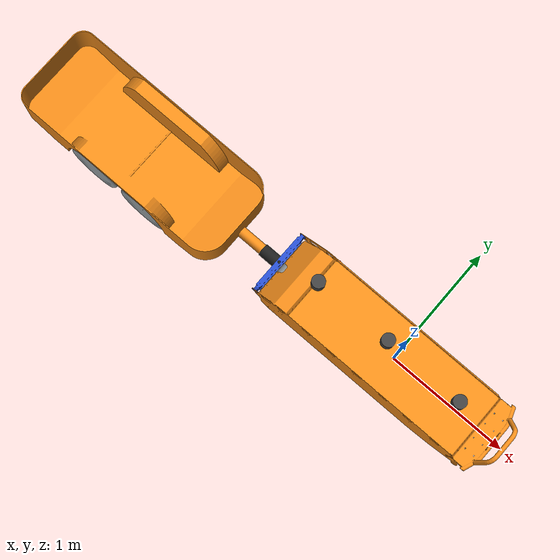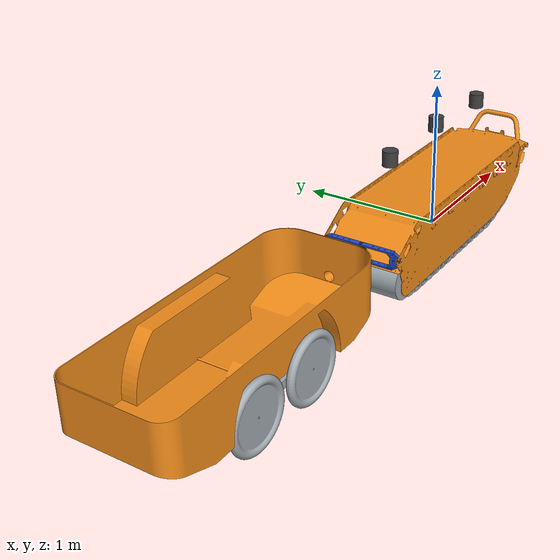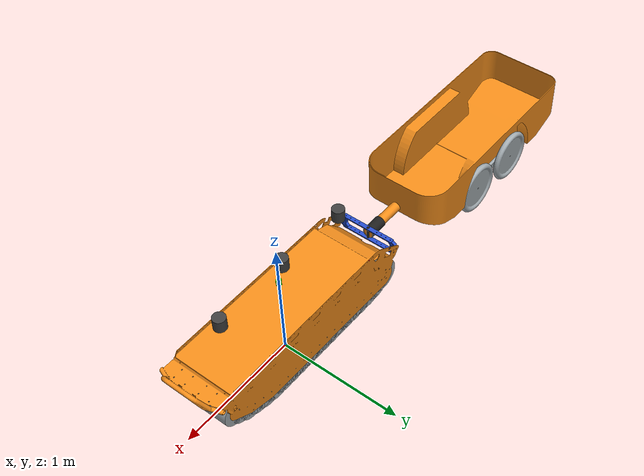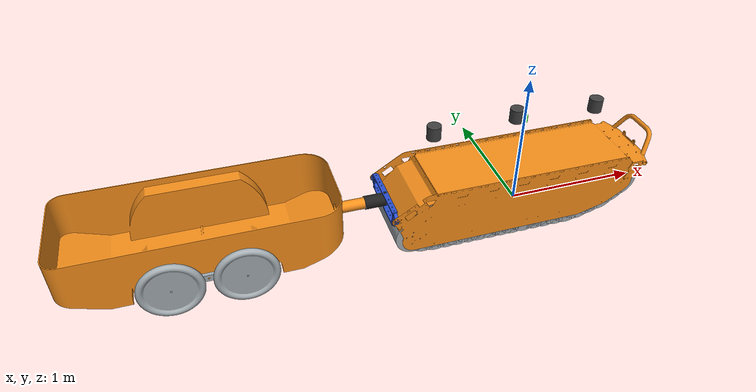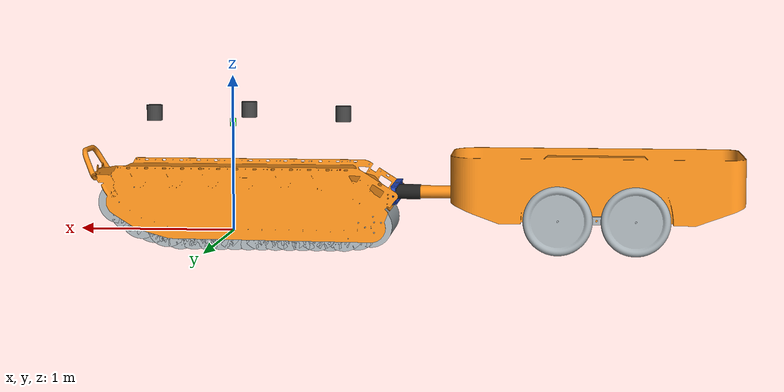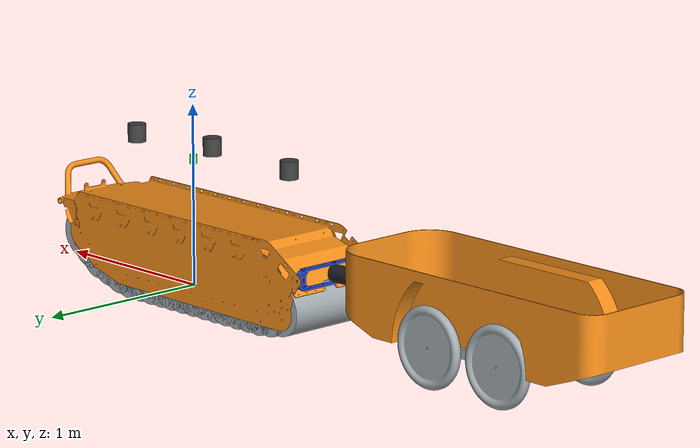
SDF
<sdf version='1.11'>
  <model name='onshape'>
    <link name='base_footprint'>
      <inertial>
        <pose>-0.077895993849594752 -0.045484125368850339 0.10209758651035911 0 0 0</pose>
        <mass>150.40000000000001</mass>
        <inertia>
          <ixx>11.215394955136221</ixx>
          <ixy>-0.00037648771659326558</ixy>
          <ixz>-0.001437969101735215</ixz>
          <iyy>58.512314565353648</iyy>
          <iyz>-0.0018269934809705961</iyz>
          <izz>63.756945860482027</izz>
        </inertia>
      </inertial>
      <visual name='base_footprint_fixed_joint_lump__base_link_visual'>
        <pose>-0.0034808381178577409 -0.051022168970358453 0.39330103716210751 0 0 3.1415926535897931</pose>
        <geometry>
          <mesh>
            <scale>1 1 1</scale>
            <uri>file:///home/ws/mtt_ws/install/mtt_description/share/mtt_description/meshes/visual/m500_ra-02_r02.stl</uri>
          </mesh>
        </geometry>
        <material>
          <script>
            <name>Gazebo/Orange</name>
            <uri>file://media/materials/scripts/gazebo.material</uri>
          </script>
          <diffuse>1 0.892156899 0.00490196096 1</diffuse>
          <ambient>1 0.892156899 0.00490196096 1</ambient>
        </material>
      </visual>
      <visual name='base_footprint_fixed_joint_lump__lidar_link_visual_1'>
        <pose>0 0 0.70000000000000007 0 0 0</pose>
        <geometry>
          <cylinder>
            <length>0.050000000000000003</length>
            <radius>0.02</radius>
          </cylinder>
        </geometry>
        <material>
          <diffuse>0 1 0 1</diffuse>
          <ambient>0 1 0 1</ambient>
        </material>
      </visual>
      <visual name='base_footprint_fixed_joint_lump__reference_point_visual_2'>
        <pose>-0.71748083811785779 0.21597831029643161 0.42330103716210749 0 0 0</pose>
        <geometry>
          <sphere>
            <radius>0.0050000000000000001</radius>
          </sphere>
        </geometry>
        <material>
          <diffuse>1 0 0 1</diffuse>
          <ambient>1 0 0 1</ambient>
        </material>
      </visual>
      <visual name='base_footprint_fixed_joint_lump__center_lidar_link_visual_3'>
        <pose>-0.097480838117857793 -0.050021689703568462 0.77830103716210752 0 0 1.5707963267948959</pose>
        <geometry>
          <cylinder>
            <length>0.10000000000000001</length>
            <radius>0.050000000000000003</radius>
          </cylinder>
        </geometry>
        <material>
          <diffuse>0.25 0.25 0.25 1</diffuse>
          <ambient>0.25 0.25 0.25 1</ambient>
        </material>
      </visual>
      <visual name='base_footprint_fixed_joint_lump__front_lidar_link_visual_4'>
        <pose>0.5225191618821422 -0.050021689703568462 0.75350103716210748 0 0 0</pose>
        <geometry>
          <cylinder>
            <length>0.10000000000000001</length>
            <radius>0.050000000000000003</radius>
          </cylinder>
        </geometry>
        <material>
          <diffuse>0.25 0.25 0.25 1</diffuse>
          <ambient>0.25 0.25 0.25 1</ambient>
        </material>
      </visual>
      <visual name='base_footprint_fixed_joint_lump__rear_lidar_link_visual_5'>
        <pose>-0.70748083811785778 -0.050021689703568462 0.75350103716210748 0 0 0</pose>
        <geometry>
          <cylinder>
            <length>0.10000000000000001</length>
            <radius>0.050000000000000003</radius>
          </cylinder>
        </geometry>
        <material>
          <diffuse>0.25 0.25 0.25 1</diffuse>
          <ambient>0.25 0.25 0.25 1</ambient>
        </material>
      </visual>
      <sensor name='center_lidar' type='gpu_lidar'>
        <update_rate>10</update_rate>
        <ray>
          <scan>
            <horizontal>
              <samples>360</samples>
              <resolution>1</resolution>
              <min_angle>-3.1400000000000001</min_angle>
              <max_angle>3.1400000000000001</max_angle>
            </horizontal>
          </scan>
          <range>
            <min>0.10000000000000001</min>
            <max>30</max>
          </range>
        </ray>
        <pose>-0.097480800000000006 -0.050021700000000002 0.77830100000000002 0 0 1.5708</pose>
      </sensor>
      <sensor name='front_lidar' type='gpu_lidar'>
        <update_rate>10</update_rate>
        <ray>
          <scan>
            <horizontal>
              <samples>360</samples>
              <resolution>1</resolution>
              <min_angle>-3.1400000000000001</min_angle>
              <max_angle>3.1400000000000001</max_angle>
            </horizontal>
          </scan>
          <range>
            <min>0.10000000000000001</min>
            <max>30</max>
          </range>
        </ray>
        <pose>0.52251899999999996 -0.050021700000000002 0.75350099999999998 0 0 0</pose>
      </sensor>
      <sensor name='rear_lidar' type='gpu_lidar'>
        <update_rate>10</update_rate>
        <ray>
          <scan>
            <horizontal>
              <samples>360</samples>
              <resolution>1</resolution>
              <min_angle>-3.1400000000000001</min_angle>
              <max_angle>3.1400000000000001</max_angle>
            </horizontal>
          </scan>
          <range>
            <min>0.10000000000000001</min>
            <max>30</max>
          </range>
        </ray>
        <pose>-0.70748100000000003 -0.050021700000000002 0.75350099999999998 0 0 0</pose>
      </sensor>
    </link>
    <joint name='10_continuous' type='revolute'>
      <pose relative_to='base_footprint'>-0.042674791204848093 -0.30260966897135838 0.037205332913699402 1.5707963267948959 0 -7.563394355258877e-16</pose>
      <parent>base_footprint</parent>
      <child>Rouleau_track_10</child>
      <axis>
        <xyz>0 0 1</xyz>
        <limit>
          <effort>-1</effort>
          <velocity>20</velocity>
          <lower>-inf</lower>
          <upper>inf</upper>
        </limit>
        <dynamics>
          <spring_reference>0</spring_reference>
          <spring_stiffness>0</spring_stiffness>
        </dynamics>
      </axis>
    </joint>
    <link name='Rouleau_track_10'>
      <pose relative_to='10_continuous'>0 0 0 0 0 0</pose>
      <inertial>
        <pose>-9.0830111450047394e-12 -8.2227341536032505e-12 -0.26193750000873389 0 0 0</pose>
        <mass>1</mass>
        <inertia>
          <ixx>0.025399999999999999</ixx>
          <ixy>0</ixy>
          <ixz>0</ixz>
          <iyy>0.025399999999999999</iyy>
          <iyz>0</iyz>
          <izz>0.0088900000000000003</izz>
        </inertia>
      </inertial>
      <visual name='Rouleau_track_10_visual'>
        <pose>-2.775557561562891e-17 0 -0.26193749999999999 -1.5707963267948959 -2.9274135154685974e-32 0</pose>
        <geometry>
          <mesh>
            <scale>1 1 1</scale>
            <uri>file:///home/ws/mtt_ws/install/mtt_description/share/mtt_description/meshes/visual/rouleaufaketrack_525po.stl</uri>
          </mesh>
        </geometry>
        <material>
          <diffuse>0.632352948 0.666666687 0.686274529 1</diffuse>
          <ambient>0.632352948 0.666666687 0.686274529 1</ambient>
        </material>
      </visual>
    </link>
    <joint name='11_continuous' type='revolute'>
      <pose relative_to='base_footprint'>-0.1298179530678156 -0.30260966897135838 0.03721535346950286 1.5707963267948959 0 -7.563394355258877e-16</pose>
      <parent>base_footprint</parent>
      <child>Rouleau_track_11</child>
      <axis>
        <xyz>0 0 1</xyz>
        <limit>
          <effort>-1</effort>
          <velocity>20</velocity>
          <lower>-inf</lower>
          <upper>inf</upper>
        </limit>
        <dynamics>
          <spring_reference>0</spring_reference>
          <spring_stiffness>0</spring_stiffness>
        </dynamics>
      </axis>
    </joint>
    <link name='Rouleau_track_11'>
      <pose relative_to='11_continuous'>0 0 0 0 0 0</pose>
      <inertial>
        <pose>-9.0830111450047394e-12 -8.2227341536032505e-12 -0.26193750000873389 0 0 0</pose>
        <mass>1</mass>
        <inertia>
          <ixx>0.025399999999999999</ixx>
          <ixy>0</ixy>
          <ixz>0</ixz>
          <iyy>0.025399999999999999</iyy>
          <iyz>0</iyz>
          <izz>0.0088900000000000003</izz>
        </inertia>
      </inertial>
      <visual name='Rouleau_track_11_visual'>
        <pose>-2.775557561562891e-17 0 -0.26193749999999999 -1.5707963267948959 -2.9274135154685974e-32 0</pose>
        <geometry>
          <mesh>
            <scale>1 1 1</scale>
            <uri>file:///home/ws/mtt_ws/install/mtt_description/share/mtt_description/meshes/visual/rouleaufaketrack_525po.stl</uri>
          </mesh>
        </geometry>
        <material>
          <diffuse>0.632352948 0.666666687 0.686274529 1</diffuse>
          <ambient>0.632352948 0.666666687 0.686274529 1</ambient>
        </material>
      </visual>
    </link>
    <joint name='12_continuous' type='revolute'>
      <pose relative_to='base_footprint'>-0.21696111493078299 -0.30260966897135833 0.037225374025305319 1.5707963267948959 0 -7.563394355258877e-16</pose>
      <parent>base_footprint</parent>
      <child>Rouleau_track_12</child>
      <axis>
        <xyz>0 0 1</xyz>
        <limit>
          <effort>-1</effort>
          <velocity>20</velocity>
          <lower>-inf</lower>
          <upper>inf</upper>
        </limit>
        <dynamics>
          <spring_reference>0</spring_reference>
          <spring_stiffness>0</spring_stiffness>
        </dynamics>
      </axis>
    </joint>
    <link name='Rouleau_track_12'>
      <pose relative_to='12_continuous'>0 0 0 0 0 0</pose>
      <inertial>
        <pose>-9.0829833894291238e-12 -8.2227341536032505e-12 -0.26193750000873389 0 0 0</pose>
        <mass>1</mass>
        <inertia>
          <ixx>0.025399999999999999</ixx>
          <ixy>0</ixy>
          <ixz>0</ixz>
          <iyy>0.025399999999999999</iyy>
          <iyz>0</iyz>
          <izz>0.0088900000000000003</izz>
        </inertia>
      </inertial>
      <visual name='Rouleau_track_12_visual'>
        <pose>0 0 -0.26193749999999999 -1.5707963267948959 -2.9274135154685974e-32 0</pose>
        <geometry>
          <mesh>
            <scale>1 1 1</scale>
            <uri>file:///home/ws/mtt_ws/install/mtt_description/share/mtt_description/meshes/visual/rouleaufaketrack_525po.stl</uri>
          </mesh>
        </geometry>
        <material>
          <diffuse>0.632352948 0.666666687 0.686274529 1</diffuse>
          <ambient>0.632352948 0.666666687 0.686274529 1</ambient>
        </material>
      </visual>
    </link>
    <joint name='13_continuous' type='revolute'>
      <pose relative_to='base_footprint'>-0.30410427679375029 -0.30260966897135821 0.037235394581107778 1.5707963267948959 0 -7.563394355258877e-16</pose>
      <parent>base_footprint</parent>
      <child>Rouleau_track_13</child>
      <axis>
        <xyz>0 0 1</xyz>
        <limit>
          <effort>-1</effort>
          <velocity>20</velocity>
          <lower>-inf</lower>
          <upper>inf</upper>
        </limit>
        <dynamics>
          <spring_reference>0</spring_reference>
          <spring_stiffness>0</spring_stiffness>
        </dynamics>
      </axis>
    </joint>
    <link name='Rouleau_track_13'>
      <pose relative_to='13_continuous'>0 0 0 0 0 0</pose>
      <inertial>
        <pose>-9.0829833894291238e-12 -8.2227341536032505e-12 -0.26193750000873389 0 0 0</pose>
        <mass>1</mass>
        <inertia>
          <ixx>0.025399999999999999</ixx>
          <ixy>0</ixy>
          <ixz>0</ixz>
          <iyy>0.025399999999999999</iyy>
          <iyz>0</iyz>
          <izz>0.0088900000000000003</izz>
        </inertia>
      </inertial>
      <visual name='Rouleau_track_13_visual'>
        <pose>0 0 -0.2619375000000001 -1.5707963267948959 -2.9274135154685974e-32 0</pose>
        <geometry>
          <mesh>
            <scale>1 1 1</scale>
            <uri>file:///home/ws/mtt_ws/install/mtt_description/share/mtt_description/meshes/visual/rouleaufaketrack_525po.stl</uri>
          </mesh>
        </geometry>
        <material>
          <diffuse>0.632352948 0.666666687 0.686274529 1</diffuse>
          <ambient>0.632352948 0.666666687 0.686274529 1</ambient>
        </material>
      </visual>
    </link>
    <joint name='14_continuous' type='revolute'>
      <pose relative_to='base_footprint'>-0.39124743865671768 -0.30260966897135821 0.037245415136910293 1.5707963267948959 0 -7.563394355258877e-16</pose>
      <parent>base_footprint</parent>
      <child>Rouleau_track_14</child>
      <axis>
        <xyz>0 0 1</xyz>
        <limit>
          <effort>-1</effort>
          <velocity>20</velocity>
          <lower>-inf</lower>
          <upper>inf</upper>
        </limit>
        <dynamics>
          <spring_reference>0</spring_reference>
          <spring_stiffness>0</spring_stiffness>
        </dynamics>
      </axis>
    </joint>
    <link name='Rouleau_track_14'>
      <pose relative_to='14_continuous'>0 0 0 0 0 0</pose>
      <inertial>
        <pose>-9.0830111450047394e-12 -8.2227341536032505e-12 -0.26193750000873389 0 0 0</pose>
        <mass>1</mass>
        <inertia>
          <ixx>0.025399999999999999</ixx>
          <ixy>0</ixy>
          <ixz>0</ixz>
          <iyy>0.025399999999999999</iyy>
          <iyz>0</iyz>
          <izz>0.0088900000000000003</izz>
        </inertia>
      </inertial>
      <visual name='Rouleau_track_14_visual'>
        <pose>-2.775557561562891e-17 0 -0.26193749999999999 -1.5707963267948959 -2.9274135154685974e-32 0</pose>
        <geometry>
          <mesh>
            <scale>1 1 1</scale>
            <uri>file:///home/ws/mtt_ws/install/mtt_description/share/mtt_description/meshes/visual/rouleaufaketrack_525po.stl</uri>
          </mesh>
        </geometry>
        <material>
          <diffuse>0.632352948 0.666666687 0.686274529 1</diffuse>
          <ambient>0.632352948 0.666666687 0.686274529 1</ambient>
        </material>
      </visual>
    </link>
    <joint name='15_continuous' type='revolute'>
      <pose relative_to='base_footprint'>-0.47839060051968407 -0.30260966897135821 0.037255435692712703 1.5707963267948959 0 -7.563394355258877e-16</pose>
      <parent>base_footprint</parent>
      <child>Rouleau_track_15</child>
      <axis>
        <xyz>0 0 1</xyz>
        <limit>
          <effort>-1</effort>
          <velocity>20</velocity>
          <lower>-inf</lower>
          <upper>inf</upper>
        </limit>
        <dynamics>
          <spring_reference>0</spring_reference>
          <spring_stiffness>0</spring_stiffness>
        </dynamics>
      </axis>
    </joint>
    <link name='Rouleau_track_15'>
      <pose relative_to='15_continuous'>0 0 0 0 0 0</pose>
      <inertial>
        <pose>-9.0830111450047394e-12 -8.2227341536032505e-12 -0.26193750000873389 0 0 0</pose>
        <mass>1</mass>
        <inertia>
          <ixx>0.025399999999999999</ixx>
          <ixy>0</ixy>
          <ixz>0</ixz>
          <iyy>0.025399999999999999</iyy>
          <iyz>0</iyz>
          <izz>0.0088900000000000003</izz>
        </inertia>
      </inertial>
      <visual name='Rouleau_track_15_visual'>
        <pose>-2.775557561562891e-17 0 -0.26193749999999999 -1.5707963267948959 -2.9274135154685974e-32 0</pose>
        <geometry>
          <mesh>
            <scale>1 1 1</scale>
            <uri>file:///home/ws/mtt_ws/install/mtt_description/share/mtt_description/meshes/visual/rouleaufaketrack_525po.stl</uri>
          </mesh>
        </geometry>
        <material>
          <diffuse>0.632352948 0.666666687 0.686274529 1</diffuse>
          <ambient>0.632352948 0.666666687 0.686274529 1</ambient>
        </material>
      </visual>
    </link>
    <joint name='16_continuous' type='revolute'>
      <pose relative_to='base_footprint'>-0.56553376238265152 -0.30260966897135799 0.037265456248515211 1.5707963267948959 0 -7.563394355258877e-16</pose>
      <parent>base_footprint</parent>
      <child>Rouleau_track_16</child>
      <axis>
        <xyz>0 0 1</xyz>
        <limit>
          <effort>-1</effort>
          <velocity>20</velocity>
          <lower>-inf</lower>
          <upper>inf</upper>
        </limit>
        <dynamics>
          <spring_reference>0</spring_reference>
          <spring_stiffness>0</spring_stiffness>
        </dynamics>
      </axis>
    </joint>
    <link name='Rouleau_track_16'>
      <pose relative_to='16_continuous'>0 0 0 0 0 0</pose>
      <inertial>
        <pose>-9.0829278782778925e-12 -8.2227341536032505e-12 -0.26193750000873389 0 0 0</pose>
        <mass>1</mass>
        <inertia>
          <ixx>0.025399999999999999</ixx>
          <ixy>0</ixy>
          <ixz>0</ixz>
          <iyy>0.025399999999999999</iyy>
          <iyz>0</iyz>
          <izz>0.0088900000000000003</izz>
        </inertia>
      </inertial>
      <visual name='Rouleau_track_16_visual'>
        <pose>5.5511151231257827e-17 0 -0.26193749999999999 -1.5707963267948959 -2.9274135154685974e-32 0</pose>
        <geometry>
          <mesh>
            <scale>1 1 1</scale>
            <uri>file:///home/ws/mtt_ws/install/mtt_description/share/mtt_description/meshes/visual/rouleaufaketrack_525po.stl</uri>
          </mesh>
        </geometry>
        <material>
          <diffuse>0.632352948 0.666666687 0.686274529 1</diffuse>
          <ambient>0.632352948 0.666666687 0.686274529 1</ambient>
        </material>
      </visual>
    </link>
    <joint name='17_continuous' type='revolute'>
      <pose relative_to='base_footprint'>-0.65267692424561885 -0.30260966897135799 0.037275476804317607 1.5707963267948959 0 -7.563394355258877e-16</pose>
      <parent>base_footprint</parent>
      <child>Rouleau_track_17</child>
      <axis>
        <xyz>0 0 1</xyz>
        <limit>
          <effort>-1</effort>
          <velocity>20</velocity>
          <lower>-inf</lower>
          <upper>inf</upper>
        </limit>
        <dynamics>
          <spring_reference>0</spring_reference>
          <spring_stiffness>0</spring_stiffness>
        </dynamics>
      </axis>
    </joint>
    <link name='Rouleau_track_17'>
      <pose relative_to='17_continuous'>0 0 0 0 0 0</pose>
      <inertial>
        <pose>-9.0829278782778925e-12 -8.2227341536032505e-12 -0.26193750000873389 0 0 0</pose>
        <mass>1</mass>
        <inertia>
          <ixx>0.025399999999999999</ixx>
          <ixy>0</ixy>
          <ixz>0</ixz>
          <iyy>0.025399999999999999</iyy>
          <iyz>0</iyz>
          <izz>0.0088900000000000003</izz>
        </inertia>
      </inertial>
      <visual name='Rouleau_track_17_visual'>
        <pose>5.5511151231257827e-17 0 -0.26193749999999999 -1.5707963267948959 -2.9274135154685974e-32 0</pose>
        <geometry>
          <mesh>
            <scale>1 1 1</scale>
            <uri>file:///home/ws/mtt_ws/install/mtt_description/share/mtt_description/meshes/visual/rouleaufaketrack_525po.stl</uri>
          </mesh>
        </geometry>
        <material>
          <diffuse>0.632352948 0.666666687 0.686274529 1</diffuse>
          <ambient>0.632352948 0.666666687 0.686274529 1</ambient>
        </material>
      </visual>
    </link>
    <joint name='18_continuous' type='revolute'>
      <pose relative_to='base_footprint'>-0.73982008610858641 -0.30260966897135788 0.037285497360120129 1.5707963267948959 0 -7.563394355258877e-16</pose>
      <parent>base_footprint</parent>
      <child>Rouleau_track_18</child>
      <axis>
        <xyz>0 0 1</xyz>
        <limit>
          <effort>-1</effort>
          <velocity>20</velocity>
          <lower>-inf</lower>
          <upper>inf</upper>
        </limit>
        <dynamics>
          <spring_reference>0</spring_reference>
          <spring_stiffness>0</spring_stiffness>
        </dynamics>
      </axis>
    </joint>
    <link name='Rouleau_track_18'>
      <pose relative_to='18_continuous'>0 0 0 0 0 0</pose>
      <inertial>
        <pose>-9.0829278782778925e-12 -8.2227341536032505e-12 -0.26193750000873389 0 0 0</pose>
        <mass>1</mass>
        <inertia>
          <ixx>0.025399999999999999</ixx>
          <ixy>0</ixy>
          <ixz>0</ixz>
          <iyy>0.025399999999999999</iyy>
          <iyz>0</iyz>
          <izz>0.0088900000000000003</izz>
        </inertia>
      </inertial>
      <visual name='Rouleau_track_18_visual'>
        <pose>5.5511151231257827e-17 0 -0.2619375000000001 -1.5707963267948959 -2.9274135154685974e-32 0</pose>
        <geometry>
          <mesh>
            <scale>1 1 1</scale>
            <uri>file:///home/ws/mtt_ws/install/mtt_description/share/mtt_description/meshes/visual/rouleaufaketrack_525po.stl</uri>
          </mesh>
        </geometry>
        <material>
          <diffuse>0.632352948 0.666666687 0.686274529 1</diffuse>
          <ambient>0.632352948 0.666666687 0.686274529 1</ambient>
        </material>
      </visual>
    </link>
    <joint name='19_continuous' type='revolute'>
      <pose relative_to='base_footprint'>-0.825954608947019 -0.30260966897135783 0.046666820730430297 1.5707963267948959 0 -7.563394355258877e-16</pose>
      <parent>base_footprint</parent>
      <child>Rouleau_track_19</child>
      <axis>
        <xyz>0 0 1</xyz>
        <limit>
          <effort>-1</effort>
          <velocity>20</velocity>
          <lower>-inf</lower>
          <upper>inf</upper>
        </limit>
        <dynamics>
          <spring_reference>0</spring_reference>
          <spring_stiffness>0</spring_stiffness>
        </dynamics>
      </axis>
    </joint>
    <link name='Rouleau_track_19'>
      <pose relative_to='19_continuous'>0 0 0 0 0 0</pose>
      <inertial>
        <pose>-9.0829833894291238e-12 -8.2227341536032505e-12 -0.26193750000873389 0 0 0</pose>
        <mass>1</mass>
        <inertia>
          <ixx>0.025399999999999999</ixx>
          <ixy>0</ixy>
          <ixz>0</ixz>
          <iyy>0.025399999999999999</iyy>
          <iyz>0</iyz>
          <izz>0.0088900000000000003</izz>
        </inertia>
      </inertial>
      <visual name='Rouleau_track_19_visual'>
        <pose>0 0 -0.26193749999999999 -1.5707963267948959 -2.9274135154685974e-32 0</pose>
        <geometry>
          <mesh>
            <scale>1 1 1</scale>
            <uri>file:///home/ws/mtt_ws/install/mtt_description/share/mtt_description/meshes/visual/rouleaufaketrack_525po.stl</uri>
          </mesh>
        </geometry>
        <material>
          <diffuse>0.632352948 0.666666687 0.686274529 1</diffuse>
          <ambient>0.632352948 0.666666687 0.686274529 1</ambient>
        </material>
      </visual>
    </link>
    <joint name='1_continuous' type='revolute'>
      <pose relative_to='base_footprint'>0.70146757632194523 -0.30260966897135899 0.19942602155526379 1.5707963267948959 0 -7.563394355258877e-16</pose>
      <parent>base_footprint</parent>
      <child>Rouleau_track_1</child>
      <axis>
        <xyz>0 0 1</xyz>
        <limit>
          <effort>-1</effort>
          <velocity>20</velocity>
          <lower>-inf</lower>
          <upper>inf</upper>
        </limit>
        <dynamics>
          <spring_reference>0</spring_reference>
          <spring_stiffness>0</spring_stiffness>
        </dynamics>
      </axis>
    </joint>
    <link name='Rouleau_track_1'>
      <pose relative_to='1_continuous'>0 0 0 0 0 0</pose>
      <inertial>
        <pose>-9.0829833894291238e-12 -8.2227341536032505e-12 -0.26193750000873389 0 0 0</pose>
        <mass>1</mass>
        <inertia>
          <ixx>0.025399999999999999</ixx>
          <ixy>0</ixy>
          <ixz>0</ixz>
          <iyy>0.025399999999999999</iyy>
          <iyz>0</iyz>
          <izz>0.0088900000000000003</izz>
        </inertia>
      </inertial>
      <visual name='Rouleau_track_1_visual'>
        <pose>0 0 -0.26193749999999999 -1.5707963267948959 -7.7037197775474107e-33 0</pose>
        <geometry>
          <mesh>
            <scale>1 1 1</scale>
            <uri>file:///home/ws/mtt_ws/install/mtt_description/share/mtt_description/meshes/visual/rouleaufaketrack_525po.stl</uri>
          </mesh>
        </geometry>
        <material>
          <diffuse>0.632352948 0.666666687 0.686274529 1</diffuse>
          <ambient>0.632352948 0.666666687 0.686274529 1</ambient>
        </material>
      </visual>
    </link>
    <joint name='20_continuous' type='revolute'>
      <pose relative_to='base_footprint'>-0.91110403062049183 -0.30260966897135783 0.065200755783730163 1.5707963267948959 0 -7.563394355258877e-16</pose>
      <parent>base_footprint</parent>
      <child>Rouleau_track_20</child>
      <axis>
        <xyz>0 0 1</xyz>
        <limit>
          <effort>-1</effort>
          <velocity>20</velocity>
          <lower>-inf</lower>
          <upper>inf</upper>
        </limit>
        <dynamics>
          <spring_reference>0</spring_reference>
          <spring_stiffness>0</spring_stiffness>
        </dynamics>
      </axis>
    </joint>
    <link name='Rouleau_track_20'>
      <pose relative_to='20_continuous'>0 0 0 0 0 0</pose>
      <inertial>
        <pose>-9.0829833894291238e-12 -8.2227480313910583e-12 -0.26193750000873389 0 0 0</pose>
        <mass>1</mass>
        <inertia>
          <ixx>0.025399999999999999</ixx>
          <ixy>0</ixy>
          <ixz>0</ixz>
          <iyy>0.025399999999999999</iyy>
          <iyz>0</iyz>
          <izz>0.0088900000000000003</izz>
        </inertia>
      </inertial>
      <collision name='Rouleau_track_20_collision'>
        <pose>0 -1.387778780781446e-17 -0.26193749999999999 0 1.0785207688568649e-32 0</pose>
        <geometry>
          <cylinder>
            <length>0.5</length>
            <radius>0.13350000000000001</radius>
          </cylinder>
        </geometry>
      </collision>
      <visual name='Rouleau_track_20_visual'>
        <pose>0 -1.387778780781446e-17 -0.26193749999999999 -1.5707963267948959 1.0785207688568649e-32 0</pose>
        <geometry>
          <mesh>
            <scale>1 1 1</scale>
            <uri>file:///home/ws/mtt_ws/install/mtt_description/share/mtt_description/meshes/visual/rouleaufaketrack_525po.stl</uri>
          </mesh>
        </geometry>
        <material>
          <diffuse>0.632352948 0.666666687 0.686274529 1</diffuse>
          <ambient>0.632352948 0.666666687 0.686274529 1</ambient>
        </material>
      </visual>
    </link>
    <joint name='2_continuous' type='revolute'>
      <pose relative_to='base_footprint'>0.63021293776953013 -0.30260966897135899 0.14925922731169389 1.5707963267948959 0 -7.563394355258877e-16</pose>
      <parent>base_footprint</parent>
      <child>Rouleau_track_2</child>
      <axis>
        <xyz>0 0 1</xyz>
        <limit>
          <effort>-1</effort>
          <velocity>20</velocity>
          <lower>-inf</lower>
          <upper>inf</upper>
        </limit>
        <dynamics>
          <spring_reference>0</spring_reference>
          <spring_stiffness>0</spring_stiffness>
        </dynamics>
      </axis>
    </joint>
    <link name='Rouleau_track_2'>
      <pose relative_to='2_continuous'>0 0 0 0 0 0</pose>
      <inertial>
        <pose>-9.0829833894291238e-12 -8.2227341536032505e-12 -0.26193750000873389 0 0 0</pose>
        <mass>1</mass>
        <inertia>
          <ixx>0.025399999999999999</ixx>
          <ixy>0</ixy>
          <ixz>0</ixz>
          <iyy>0.025399999999999999</iyy>
          <iyz>0</iyz>
          <izz>0.0088900000000000003</izz>
        </inertia>
      </inertial>
      <visual name='Rouleau_track_2_visual'>
        <pose>0 0 -0.26193749999999999 -1.5707963267948959 -7.7037197775474107e-33 0</pose>
        <geometry>
          <mesh>
            <scale>1 1 1</scale>
            <uri>file:///home/ws/mtt_ws/install/mtt_description/share/mtt_description/meshes/visual/rouleaufaketrack_525po.stl</uri>
          </mesh>
        </geometry>
        <material>
          <diffuse>0.632352948 0.666666687 0.686274529 1</diffuse>
          <ambient>0.632352948 0.666666687 0.686274529 1</ambient>
        </material>
      </visual>
    </link>
    <joint name='3_continuous' type='revolute'>
      <pose relative_to='base_footprint'>0.55767703136521962 -0.30260966897135888 0.1017105382069472 1.5707963267948959 0 -7.563394355258877e-16</pose>
      <parent>base_footprint</parent>
      <child>Rouleau_track_3</child>
      <axis>
        <xyz>0 0 1</xyz>
        <limit>
          <effort>-1</effort>
          <velocity>20</velocity>
          <lower>-inf</lower>
          <upper>inf</upper>
        </limit>
        <dynamics>
          <spring_reference>0</spring_reference>
          <spring_stiffness>0</spring_stiffness>
        </dynamics>
      </axis>
    </joint>
    <link name='Rouleau_track_3'>
      <pose relative_to='3_continuous'>0 0 0 0 0 0</pose>
      <inertial>
        <pose>-9.0829833894291238e-12 -8.2227341536032505e-12 -0.26193750000873389 0 0 0</pose>
        <mass>1</mass>
        <inertia>
          <ixx>0.025399999999999999</ixx>
          <ixy>0</ixy>
          <ixz>0</ixz>
          <iyy>0.025399999999999999</iyy>
          <iyz>0</iyz>
          <izz>0.0088900000000000003</izz>
        </inertia>
      </inertial>
      <visual name='Rouleau_track_3_visual'>
        <pose>0 0 -0.26193749999999999 -1.5707963267948959 -2.9274135154685974e-32 0</pose>
        <geometry>
          <mesh>
            <scale>1 1 1</scale>
            <uri>file:///home/ws/mtt_ws/install/mtt_description/share/mtt_description/meshes/visual/rouleaufaketrack_525po.stl</uri>
          </mesh>
        </geometry>
        <material>
          <diffuse>0.632352948 0.666666687 0.686274529 1</diffuse>
          <ambient>0.632352948 0.666666687 0.686274529 1</ambient>
        </material>
      </visual>
    </link>
    <joint name='4_continuous' type='revolute'>
      <pose relative_to='base_footprint'>0.4743441239043048 -0.30260966897135888 0.07622412429685807 1.5707963267948959 0 -7.563394355258877e-16</pose>
      <parent>base_footprint</parent>
      <child>Rouleau_track_4</child>
      <axis>
        <xyz>0 0 1</xyz>
        <limit>
          <effort>-1</effort>
          <velocity>20</velocity>
          <lower>-inf</lower>
          <upper>inf</upper>
        </limit>
        <dynamics>
          <spring_reference>0</spring_reference>
          <spring_stiffness>0</spring_stiffness>
        </dynamics>
      </axis>
    </joint>
    <link name='Rouleau_track_4'>
      <pose relative_to='4_continuous'>0 0 0 0 0 0</pose>
      <inertial>
        <pose>-9.0829833894291238e-12 -8.2227341536032505e-12 -0.26193750000873389 0 0 0</pose>
        <mass>1</mass>
        <inertia>
          <ixx>0.025399999999999999</ixx>
          <ixy>0</ixy>
          <ixz>0</ixz>
          <iyy>0.025399999999999999</iyy>
          <iyz>0</iyz>
          <izz>0.0088900000000000003</izz>
        </inertia>
      </inertial>
      <visual name='Rouleau_track_4_visual'>
        <pose>0 0 -0.26193749999999999 -1.5707963267948959 -2.9274135154685974e-32 0</pose>
        <geometry>
          <mesh>
            <scale>1 1 1</scale>
            <uri>file:///home/ws/mtt_ws/install/mtt_description/share/mtt_description/meshes/visual/rouleaufaketrack_525po.stl</uri>
          </mesh>
        </geometry>
        <material>
          <diffuse>0.632352948 0.666666687 0.686274529 1</diffuse>
          <ambient>0.632352948 0.666666687 0.686274529 1</ambient>
        </material>
      </visual>
    </link>
    <joint name='5_continuous' type='revolute'>
      <pose relative_to='base_footprint'>0.39101121644338022 -0.30260966897135883 0.050737710386768858 1.5707963267948959 0 -7.563394355258877e-16</pose>
      <parent>base_footprint</parent>
      <child>Rouleau_track_5</child>
      <axis>
        <xyz>0 0 1</xyz>
        <limit>
          <effort>-1</effort>
          <velocity>20</velocity>
          <lower>-inf</lower>
          <upper>inf</upper>
        </limit>
        <dynamics>
          <spring_reference>0</spring_reference>
          <spring_stiffness>0</spring_stiffness>
        </dynamics>
      </axis>
    </joint>
    <link name='Rouleau_track_5'>
      <pose relative_to='5_continuous'>0 0 0 0 0 0</pose>
      <inertial>
        <pose>-9.0829833894291238e-12 -8.2227341536032505e-12 -0.26193750000873389 0 0 0</pose>
        <mass>1</mass>
        <inertia>
          <ixx>0.025399999999999999</ixx>
          <ixy>0</ixy>
          <ixz>0</ixz>
          <iyy>0.025399999999999999</iyy>
          <iyz>0</iyz>
          <izz>0.0088900000000000003</izz>
        </inertia>
      </inertial>
      <collision name='Rouleau_track_5_collision'>
        <pose>0 0 -0.26193749999999999 0 -2.9274135154685979e-32 0</pose>
        <geometry>
          <cylinder>
            <length>0.5</length>
            <radius>0.13350000000000001</radius>
          </cylinder>
        </geometry>
      </collision>
      <visual name='Rouleau_track_5_visual'>
        <pose>0 0 -0.26193749999999999 -1.5707963267948959 -2.9274135154685974e-32 0</pose>
        <geometry>
          <mesh>
            <scale>1 1 1</scale>
            <uri>file:///home/ws/mtt_ws/install/mtt_description/share/mtt_description/meshes/visual/rouleaufaketrack_525po.stl</uri>
          </mesh>
        </geometry>
        <material>
          <diffuse>0.632352948 0.666666687 0.686274529 1</diffuse>
          <ambient>0.632352948 0.666666687 0.686274529 1</ambient>
        </material>
      </visual>
    </link>
    <joint name='6_continuous' type='revolute'>
      <pose relative_to='base_footprint'>0.30589785624702448 -0.30260966897135871 0.037165250690489572 1.5707963267948959 0 -7.563394355258877e-16</pose>
      <parent>base_footprint</parent>
      <child>Rouleau_track_6</child>
      <axis>
        <xyz>0 0 1</xyz>
        <limit>
          <effort>-1</effort>
          <velocity>20</velocity>
          <lower>-inf</lower>
          <upper>inf</upper>
        </limit>
        <dynamics>
          <spring_reference>0</spring_reference>
          <spring_stiffness>0</spring_stiffness>
        </dynamics>
      </axis>
    </joint>
    <link name='Rouleau_track_6'>
      <pose relative_to='6_continuous'>0 0 0 0 0 0</pose>
      <inertial>
        <pose>-9.0829833894291238e-12 -8.2227341536032505e-12 -0.26193750000873389 0 0 0</pose>
        <mass>1</mass>
        <inertia>
          <ixx>0.025399999999999999</ixx>
          <ixy>0</ixy>
          <ixz>0</ixz>
          <iyy>0.025399999999999999</iyy>
          <iyz>0</iyz>
          <izz>0.0088900000000000003</izz>
        </inertia>
      </inertial>
      <visual name='Rouleau_track_6_visual'>
        <pose>0 0 -0.26193749999999999 -1.5707963267948959 -2.9274135154685974e-32 0</pose>
        <geometry>
          <mesh>
            <scale>1 1 1</scale>
            <uri>file:///home/ws/mtt_ws/install/mtt_description/share/mtt_description/meshes/visual/rouleaufaketrack_525po.stl</uri>
          </mesh>
        </geometry>
        <material>
          <diffuse>0.632352948 0.666666687 0.686274529 1</diffuse>
          <ambient>0.632352948 0.666666687 0.686274529 1</ambient>
        </material>
      </visual>
    </link>
    <joint name='7_continuous' type='revolute'>
      <pose relative_to='base_footprint'>0.2187546943840542 -0.30260966897135871 0.037175271246291969 1.5707963267948959 0 -7.563394355258877e-16</pose>
      <parent>base_footprint</parent>
      <child>Rouleau_track_7</child>
      <axis>
        <xyz>0 0 1</xyz>
        <limit>
          <effort>-1</effort>
          <velocity>20</velocity>
          <lower>-inf</lower>
          <upper>inf</upper>
        </limit>
        <dynamics>
          <spring_reference>0</spring_reference>
          <spring_stiffness>0</spring_stiffness>
        </dynamics>
      </axis>
    </joint>
    <link name='Rouleau_track_7'>
      <pose relative_to='7_continuous'>0 0 0 0 0 0</pose>
      <inertial>
        <pose>-9.0829278782778925e-12 -8.2227341536032505e-12 -0.26193750000873389 0 0 0</pose>
        <mass>1</mass>
        <inertia>
          <ixx>0.025399999999999999</ixx>
          <ixy>0</ixy>
          <ixz>0</ixz>
          <iyy>0.025399999999999999</iyy>
          <iyz>0</iyz>
          <izz>0.0088900000000000003</izz>
        </inertia>
      </inertial>
      <visual name='Rouleau_track_7_visual'>
        <pose>5.5511151231257827e-17 0 -0.26193749999999999 -1.5707963267948959 -2.9274135154685974e-32 0</pose>
        <geometry>
          <mesh>
            <scale>1 1 1</scale>
            <uri>file:///home/ws/mtt_ws/install/mtt_description/share/mtt_description/meshes/visual/rouleaufaketrack_525po.stl</uri>
          </mesh>
        </geometry>
        <material>
          <diffuse>0.632352948 0.666666687 0.686274529 1</diffuse>
          <ambient>0.632352948 0.666666687 0.686274529 1</ambient>
        </material>
      </visual>
    </link>
    <joint name='8_continuous' type='revolute'>
      <pose relative_to='base_footprint'>0.13161153252108559 -0.30260966897135871 0.037185291802094483 1.5707963267948959 0 -7.563394355258877e-16</pose>
      <parent>base_footprint</parent>
      <child>Rouleau_track_8</child>
      <axis>
        <xyz>0 0 1</xyz>
        <limit>
          <effort>-1</effort>
          <velocity>20</velocity>
          <lower>-inf</lower>
          <upper>inf</upper>
        </limit>
        <dynamics>
          <spring_reference>0</spring_reference>
          <spring_stiffness>0</spring_stiffness>
        </dynamics>
      </axis>
    </joint>
    <link name='Rouleau_track_8'>
      <pose relative_to='8_continuous'>0 0 0 0 0 0</pose>
      <inertial>
        <pose>-9.0829278782778925e-12 -8.2227341536032505e-12 -0.26193750000873389 0 0 0</pose>
        <mass>1</mass>
        <inertia>
          <ixx>0.025399999999999999</ixx>
          <ixy>0</ixy>
          <ixz>0</ixz>
          <iyy>0.025399999999999999</iyy>
          <iyz>0</iyz>
          <izz>0.0088900000000000003</izz>
        </inertia>
      </inertial>
      <visual name='Rouleau_track_8_visual'>
        <pose>5.5511151231257827e-17 0 -0.26193749999999999 -1.5707963267948959 -2.9274135154685974e-32 0</pose>
        <geometry>
          <mesh>
            <scale>1 1 1</scale>
            <uri>file:///home/ws/mtt_ws/install/mtt_description/share/mtt_description/meshes/visual/rouleaufaketrack_525po.stl</uri>
          </mesh>
        </geometry>
        <material>
          <diffuse>0.632352948 0.666666687 0.686274529 1</diffuse>
          <ambient>0.632352948 0.666666687 0.686274529 1</ambient>
        </material>
      </visual>
    </link>
    <joint name='9_continuous' type='revolute'>
      <pose relative_to='base_footprint'>0.044468370658119268 -0.30260966897135849 0.037195312357896942 1.5707963267948959 0 -7.563394355258877e-16</pose>
      <parent>base_footprint</parent>
      <child>Rouleau_track_9</child>
      <axis>
        <xyz>0 0 1</xyz>
        <limit>
          <effort>-1</effort>
          <velocity>20</velocity>
          <lower>-inf</lower>
          <upper>inf</upper>
        </limit>
        <dynamics>
          <spring_reference>0</spring_reference>
          <spring_stiffness>0</spring_stiffness>
        </dynamics>
      </axis>
    </joint>
    <link name='Rouleau_track_9'>
      <pose relative_to='9_continuous'>0 0 0 0 0 0</pose>
      <inertial>
        <pose>-9.0829278782778925e-12 -8.2227341536032505e-12 -0.26193750000873389 0 0 0</pose>
        <mass>1</mass>
        <inertia>
          <ixx>0.025399999999999999</ixx>
          <ixy>0</ixy>
          <ixz>0</ixz>
          <iyy>0.025399999999999999</iyy>
          <iyz>0</iyz>
          <izz>0.0088900000000000003</izz>
        </inertia>
      </inertial>
      <visual name='Rouleau_track_9_visual'>
        <pose>5.5511151231257827e-17 0 -0.26193749999999999 -1.5707963267948959 -2.9274135154685974e-32 0</pose>
        <geometry>
          <mesh>
            <scale>1 1 1</scale>
            <uri>file:///home/ws/mtt_ws/install/mtt_description/share/mtt_description/meshes/visual/rouleaufaketrack_525po.stl</uri>
          </mesh>
        </geometry>
        <material>
          <diffuse>0.632352948 0.666666687 0.686274529 1</diffuse>
          <ambient>0.632352948 0.666666687 0.686274529 1</ambient>
        </material>
      </visual>
    </link>
    <joint name='pitch' type='revolute'>
      <pose relative_to='base_footprint'>-1.051187837601858 0.2125028310306423 0.25775105114691788 -1.5707963267948959 0 -7.563394355258877e-16</pose>
      <parent>base_footprint</parent>
      <child>Frame_fixation_articule</child>
      <axis>
        <xyz>0 0 1</xyz>
        <limit>
          <lower>-1.570796326794897</lower>
          <upper>1.570796326794897</upper>
          <effort>-1</effort>
          <velocity>20</velocity>
        </limit>
        <dynamics>
          <spring_reference>0</spring_reference>
          <spring_stiffness>0</spring_stiffness>
        </dynamics>
      </axis>
    </joint>
    <link name='Frame_fixation_articule'>
      <pose relative_to='pitch'>0 0 0 0 0 0</pose>
      <inertial>
        <pose>-3.9892756405493079e-11 -1.1475286443859221e-10 -0.26817516801928171 0 0 0</pose>
        <mass>4.2856980941026048</mass>
        <inertia>
          <ixx>0.15081833822080551</ixx>
          <ixy>-3.1493952847483553e-14</ixy>
          <ixz>-2.729130143354647e-09</ixz>
          <iyy>0.14291517499876991</iyy>
          <iyz>4.1782617806359028e-10</iyz>
          <izz>0.008772976040851534</izz>
        </inertia>
      </inertial>
      <visual name='Frame_fixation_articule_visual'>
        <pose>0 0 -0.26352500000103002 1.5707963267948959 2.9274135154685974e-32 0</pose>
        <geometry>
          <mesh>
            <scale>1 1 1</scale>
            <uri>file:///home/ws/mtt_ws/install/mtt_description/share/mtt_description/meshes/visual/m500_fa-f-01_r00.stl</uri>
          </mesh>
        </geometry>
        <material>
          <script>
            <name>Gazebo/Blue</name>
            <uri>file://media/materials/scripts/gazebo.material</uri>
          </script>
          <diffuse>1 0.892156899 0.00490196096 1</diffuse>
          <ambient>1 0.892156899 0.00490196096 1</ambient>
        </material>
      </visual>
    </link>
    <joint name='yaw' type='revolute'>
      <pose relative_to='Frame_fixation_articule'>3.9990233346998139e-13 0.057149999999500017 -0.26352500000202989 -1.5707963267948959 2.9274135154685974e-32 0</pose>
      <parent>Frame_fixation_articule</parent>
      <child>joint_remorque_simple</child>
      <axis>
        <xyz>0 0 1</xyz>
        <limit>
          <lower>-1.0471975511965981</lower>
          <upper>1.0471975511965981</upper>
          <effort>1000000000</effort>
          <velocity>20</velocity>
        </limit>
        <dynamics>
          <spring_reference>0</spring_reference>
          <spring_stiffness>0</spring_stiffness>
        </dynamics>
      </axis>
    </joint>
    <link name='joint_remorque_simple'>
      <pose relative_to='yaw'>0 0 0 0 0 0</pose>
      <inertial>
        <pose>-0.06664907839728397 -1.326404872336092e-08 -0.05714999999985157 0 0 0</pose>
        <mass>2.4244944218593218</mass>
        <inertia>
          <ixx>0.0045362397987309356</ixx>
          <ixy>2.7180197249639031e-09</ixy>
          <ixz>2.2800525023181051e-41</ixz>
          <iyy>0.0080855686635830839</iyy>
          <iyz>-9.2489917741012919e-10</iyz>
          <izz>0.0077799714228289117</izz>
        </inertia>
      </inertial>
      <visual name='joint_remorque_simple_visual'>
        <pose>0 0 -0.114299999999703 3.1415926535897931 1.094764425253763e-47 2.4651903288156619e-32</pose>
        <geometry>
          <mesh>
            <scale>1 1 1</scale>
            <uri>file:///home/ws/mtt_ws/install/mtt_description/share/mtt_description/meshes/visual/joint_remorque_simple.stl</uri>
          </mesh>
        </geometry>
        <material>
          <script>
            <name>Gazebo/Black</name>
            <uri>file://media/materials/scripts/gazebo.material</uri>
          </script>
          <diffuse>0.632352948 0.666666687 0.686274529 1</diffuse>
          <ambient>0.632352948 0.666666687 0.686274529 1</ambient>
        </material>
      </visual>
    </link>
    <joint name='roll' type='revolute'>
      <pose relative_to='joint_remorque_simple'>0 -1.110223024625157e-16 -0.057149999999851597 -1.5707963267948959 -5.5511151231257827e-17 -1.5707963267948959</pose>
      <parent>joint_remorque_simple</parent>
      <child>MTT_remorque</child>
      <axis>
        <xyz>0 0 1</xyz>
        <limit>
          <lower>-1.570796326794897</lower>
          <upper>1.570796326794897</upper>
          <effort>-1</effort>
          <velocity>20</velocity>
        </limit>
        <dynamics>
          <spring_reference>0</spring_reference>
          <spring_stiffness>0</spring_stiffness>
        </dynamics>
      </axis>
    </joint>
    <link name='MTT_remorque'>
      <pose relative_to='roll'>0 0 0 0 0 0</pose>
      <inertial>
        <pose>-1.3754218481959809e-07 0.003423650117086926 -1.2492342427482761 0 0 0</pose>
        <mass>75</mass>
        <inertia>
          <ixx>19.609999999999999</ixx>
          <ixy>1.9694375352015791e-06</ixy>
          <ixz>3.4143802835478519e-05</ixz>
          <iyy>22.119</iyy>
          <iyz>0.089480447349249051</iyz>
          <izz>4.3689999999999998</izz>
        </inertia>
      </inertial>
      <visual name='MTT_remorque_visual'>
        <pose>0 0 0 -1.5707963267948959 -2.9274135154686073e-32 0</pose>
        <geometry>
          <mesh>
            <scale>1 1 1</scale>
            <uri>file:///home/ws/mtt_ws/install/mtt_description/share/mtt_description/meshes/visual/remorquegrise_corps.stl</uri>
          </mesh>
        </geometry>
        <material>
          <script>
            <name>Gazebo/Orange</name>
            <uri>file://media/materials/scripts/gazebo.material</uri>
          </script>
          <diffuse>0.632352948 0.666666687 0.686274529 1</diffuse>
          <ambient>0.632352948 0.666666687 0.686274529 1</ambient>
        </material>
      </visual>
    </link>
    <joint name='Remorque_lien_roue_droite_joint' type='revolute'>
      <pose relative_to='MTT_remorque'>-0.27939999999999998 -0.13792199999999999 -1.27 0 -1.5707963267948966 0</pose>
      <parent>MTT_remorque</parent>
      <child>Remorque_lien_roue_droite</child>
      <axis>
        <xyz>0 0 1</xyz>
        <limit>
          <lower>-0.52359877559829882</lower>
          <upper>0.52359877559829882</upper>
          <effort>-1</effort>
          <velocity>20</velocity>
        </limit>
        <dynamics>
          <spring_reference>0</spring_reference>
          <spring_stiffness>0</spring_stiffness>
        </dynamics>
      </axis>
    </joint>
    <link name='Remorque_lien_roue_droite'>
      <pose relative_to='Remorque_lien_roue_droite_joint'>0 0 0 0 0 0</pose>
      <inertial>
        <pose>-2.2204460492503131e-16 -1.7347234759768071e-18 -0.011962764931897961 0 0 0</pose>
        <mass>1</mass>
        <inertia>
          <ixx>0.001548161430997771</ixx>
          <ixy>0</ixy>
          <ixz>-3.3987014700653987e-33</ixz>
          <iyy>0.11698078969574199</iyy>
          <iyz>0</iyz>
          <izz>0.1176472862080913</izz>
        </inertia>
      </inertial>
      <visual name='Remorque_lien_roue_droite_visual'>
        <pose>-0.46990000000101517 -0.0144779999670738 -0.02540000000000003 0 -2.9274135154685979e-32 0</pose>
        <geometry>
          <mesh>
            <scale>1 1 1</scale>
            <uri>file:///home/ws/mtt_ws/install/mtt_description/share/mtt_description/meshes/visual/remorquebarrelienroues.stl</uri>
          </mesh>
        </geometry>
        <material>
          <diffuse>0.632352948 0.666666687 0.686274529 1</diffuse>
          <ambient>0.632352948 0.666666687 0.686274529 1</ambient>
        </material>
      </visual>
    </link>
    <joint name='backright_wheel' type='revolute'>
      <pose relative_to='Remorque_lien_roue_droite'>-0.24130000000000029 0 0.050799999999999852 0 -2.9274135154685979e-32 0</pose>
      <parent>Remorque_lien_roue_droite</parent>
      <child>remorque_roue_BR</child>
      <axis>
        <xyz>0 0 1</xyz>
        <limit>
          <effort>-1</effort>
          <velocity>20</velocity>
          <lower>-inf</lower>
          <upper>inf</upper>
        </limit>
        <dynamics>
          <spring_reference>0</spring_reference>
          <spring_stiffness>0</spring_stiffness>
        </dynamics>
      </axis>
    </joint>
    <link name='remorque_roue_BR'>
      <pose relative_to='backright_wheel'>0 0 0 0 0 0</pose>
      <inertial>
        <pose>-5.5159452104843918e-18 -3.3329708142992709e-16 -0.01270000000000001 0 0 0</pose>
        <mass>1</mass>
        <inertia>
          <ixx>0.0149</ixx>
          <ixy>0</ixy>
          <ixz>-1.374351346663825e-32</ixz>
          <iyy>0.0149</iyy>
          <iyz>0</iyz>
          <izz>0.029595</izz>
        </inertia>
      </inertial>
      <collision name='remorque_roue_BR_collision'>
        <pose>0 -3.3306690738754701e-16 0 0 -2.9274135154685979e-32 0</pose>
        <geometry>
          <cylinder>
            <length>0.12</length>
            <radius>0.20000000000000001</radius>
          </cylinder>
        </geometry>
      </collision>
      <visual name='remorque_roue_BR_visual'>
        <pose>0 -3.3306690738754701e-16 0 0 -2.9274135154685979e-32 0</pose>
        <geometry>
          <mesh>
            <scale>1 1 1</scale>
            <uri>file:///home/ws/mtt_ws/install/mtt_description/share/mtt_description/meshes/visual/remorqueroue.stl</uri>
          </mesh>
        </geometry>
        <material>
          <diffuse>0.632352948 0.666666687 0.686274529 1</diffuse>
          <ambient>0.632352948 0.666666687 0.686274529 1</ambient>
        </material>
      </visual>
    </link>
    <joint name='frontright_wheel' type='revolute'>
      <pose relative_to='Remorque_lien_roue_droite'>0.24129999999999979 -1.110223024625157e-16 0.050799999999999963 0 -2.9274135154685979e-32 0</pose>
      <parent>Remorque_lien_roue_droite</parent>
      <child>remorque_roue_FR</child>
      <axis>
        <xyz>0 0 1</xyz>
        <limit>
          <effort>-1</effort>
          <velocity>20</velocity>
          <lower>-inf</lower>
          <upper>inf</upper>
        </limit>
        <dynamics>
          <spring_reference>0</spring_reference>
          <spring_stiffness>0</spring_stiffness>
        </dynamics>
      </axis>
    </joint>
    <link name='remorque_roue_FR'>
      <pose relative_to='frontright_wheel'>0 0 0 0 0 0</pose>
      <inertial>
        <pose>-5.5159452104843918e-18 -3.3329708142992709e-16 -0.012699999999999949 0 0 0</pose>
        <mass>1</mass>
        <inertia>
          <ixx>0.0149</ixx>
          <ixy>0</ixy>
          <ixz>-1.374351346663825e-32</ixz>
          <iyy>0.0149</iyy>
          <iyz>0</iyz>
          <izz>0.029595</izz>
        </inertia>
      </inertial>
      <collision name='remorque_roue_FR_collision'>
        <pose>0 -3.3306690738754701e-16 5.5511151231257827e-17 0 -2.9274135154685979e-32 0</pose>
        <geometry>
          <cylinder>
            <length>0.12</length>
            <radius>0.20000000000000001</radius>
          </cylinder>
        </geometry>
      </collision>
      <visual name='remorque_roue_FR_visual'>
        <pose>0 -3.3306690738754701e-16 5.5511151231257827e-17 0 -2.9274135154685979e-32 0</pose>
        <geometry>
          <mesh>
            <scale>1 1 1</scale>
            <uri>file:///home/ws/mtt_ws/install/mtt_description/share/mtt_description/meshes/visual/remorqueroue.stl</uri>
          </mesh>
        </geometry>
        <material>
          <diffuse>0.632352948 0.666666687 0.686274529 1</diffuse>
          <ambient>0.632352948 0.666666687 0.686274529 1</ambient>
        </material>
      </visual>
    </link>
    <joint name='Remorque_lien_roue_gauche_joint' type='revolute'>
      <pose relative_to='MTT_remorque'>0.27939999999999998 -0.13792199999999999 -1.27 -3.1415926535897931 -1.5707963267948966 0</pose>
      <parent>MTT_remorque</parent>
      <child>Remorque_lien_roue_gauche</child>
      <axis>
        <xyz>0 0 1</xyz>
        <limit>
          <lower>-0.52359877559829882</lower>
          <upper>0.52359877559829882</upper>
          <effort>-1</effort>
          <velocity>20</velocity>
        </limit>
        <dynamics>
          <spring_reference>0</spring_reference>
          <spring_stiffness>0</spring_stiffness>
        </dynamics>
      </axis>
    </joint>
    <link name='Remorque_lien_roue_gauche'>
      <pose relative_to='Remorque_lien_roue_gauche_joint'>0 0 0 0 0 0</pose>
      <inertial>
        <pose>-2.2204460492503131e-16 -1.7347234759768071e-18 -0.011962764931897929 0 0 0</pose>
        <mass>1</mass>
        <inertia>
          <ixx>0.001548161430997771</ixx>
          <ixy>0</ixy>
          <ixz>3.3987014700653987e-33</ixz>
          <iyy>0.11698078969574199</iyy>
          <iyz>0</iyz>
          <izz>0.1176472862080913</izz>
        </inertia>
      </inertial>
      <visual name='Remorque_lien_roue_gauche_visual'>
        <pose>-0.46990000000101517 -0.0144779999670738 -0.025400000000000009 0 2.9274135154685979e-32 0</pose>
        <geometry>
          <mesh>
            <scale>1 1 1</scale>
            <uri>file:///home/ws/mtt_ws/install/mtt_description/share/mtt_description/meshes/visual/remorquebarrelienroues.stl</uri>
          </mesh>
        </geometry>
        <material>
          <diffuse>0.632352948 0.666666687 0.686274529 1</diffuse>
          <ambient>0.632352948 0.666666687 0.686274529 1</ambient>
        </material>
      </visual>
    </link>
    <joint name='backleft_wheel' type='revolute'>
      <pose relative_to='Remorque_lien_roue_gauche'>-0.24129999999999979 0 0.050799999999999977 0 2.9274135154685979e-32 0</pose>
      <parent>Remorque_lien_roue_gauche</parent>
      <child>remorque_roue_BL</child>
      <axis>
        <xyz>0 0 1</xyz>
        <limit>
          <effort>-1</effort>
          <velocity>20</velocity>
          <lower>-inf</lower>
          <upper>inf</upper>
        </limit>
        <dynamics>
          <spring_reference>0</spring_reference>
          <spring_stiffness>0</spring_stiffness>
        </dynamics>
      </axis>
    </joint>
    <link name='remorque_roue_BL'>
      <pose relative_to='backleft_wheel'>0 0 0 0 0 0</pose>
      <inertial>
        <pose>-5.5159452104843918e-18 -3.3329708142992709e-16 -0.01270000000000001 0 0 0</pose>
        <mass>1</mass>
        <inertia>
          <ixx>0.0149</ixx>
          <ixy>0</ixy>
          <ixz>1.374351346663825e-32</ixz>
          <iyy>0.0149</iyy>
          <iyz>0</iyz>
          <izz>0.029595</izz>
        </inertia>
      </inertial>
      <collision name='remorque_roue_BL_collision'>
        <pose>0 -3.3306690738754701e-16 0 0 2.9274135154685979e-32 0</pose>
        <geometry>
          <cylinder>
            <length>0.12</length>
            <radius>0.20000000000000001</radius>
          </cylinder>
        </geometry>
      </collision>
      <visual name='remorque_roue_BL_visual'>
        <pose>0 -3.3306690738754701e-16 0 0 2.9274135154685979e-32 0</pose>
        <geometry>
          <mesh>
            <scale>1 1 1</scale>
            <uri>file:///home/ws/mtt_ws/install/mtt_description/share/mtt_description/meshes/visual/remorqueroue.stl</uri>
          </mesh>
        </geometry>
        <material>
          <diffuse>0.632352948 0.666666687 0.686274529 1</diffuse>
          <ambient>0.632352948 0.666666687 0.686274529 1</ambient>
        </material>
      </visual>
    </link>
    <joint name='frontleft_wheel' type='revolute'>
      <pose relative_to='Remorque_lien_roue_gauche'>0.24129999999999979 0 0.05080000000000004 0 2.9274135154685979e-32 0</pose>
      <parent>Remorque_lien_roue_gauche</parent>
      <child>remorque_roue_FL</child>
      <axis>
        <xyz>0 0 1</xyz>
        <limit>
          <effort>-1</effort>
          <velocity>20</velocity>
          <lower>-inf</lower>
          <upper>inf</upper>
        </limit>
        <dynamics>
          <spring_reference>0</spring_reference>
          <spring_stiffness>0</spring_stiffness>
        </dynamics>
      </axis>
    </joint>
    <link name='remorque_roue_FL'>
      <pose relative_to='frontleft_wheel'>0 0 0 0 0 0</pose>
      <inertial>
        <pose>-5.5159452104843918e-18 -3.3329708142992709e-16 -0.01270000000000001 0 0 0</pose>
        <mass>1</mass>
        <inertia>
          <ixx>0.0149</ixx>
          <ixy>0</ixy>
          <ixz>1.374351346663825e-32</ixz>
          <iyy>0.0149</iyy>
          <iyz>0</iyz>
          <izz>0.029595</izz>
        </inertia>
      </inertial>
      <collision name='remorque_roue_FL_collision'>
        <pose>0 -3.3306690738754701e-16 0 0 2.9274135154685979e-32 0</pose>
        <geometry>
          <cylinder>
            <length>0.12</length>
            <radius>0.20000000000000001</radius>
          </cylinder>
        </geometry>
      </collision>
      <visual name='remorque_roue_FL_visual'>
        <pose>0 -3.3306690738754701e-16 0 0 2.9274135154685979e-32 0</pose>
        <geometry>
          <mesh>
            <scale>1 1 1</scale>
            <uri>file:///home/ws/mtt_ws/install/mtt_description/share/mtt_description/meshes/visual/remorqueroue.stl</uri>
          </mesh>
        </geometry>
        <material>
          <diffuse>0.632352948 0.666666687 0.686274529 1</diffuse>
          <ambient>0.632352948 0.666666687 0.686274529 1</ambient>
        </material>
      </visual>
    </link>
    <plugin name='gz_ros2_control::GazeboSimROS2ControlPlugin' filename='gz_ros2_control-system'>
      <parameters>/home/ws/mtt_ws/install/mtt_bringup/share/mtt_bringup/config/control_config.yaml</parameters>
    </plugin>
    <plugin name='gz::sim::systems::PosePublisher' filename='gz-sim-pose-publisher-system'>
      <publish_model_pose>true</publish_model_pose>
    </plugin>
    <frame name='lidar_joint' attached_to='base_link'>
      <pose>0 0 0.80000000000000004 0 0 0</pose>
    </frame>
    <frame name='lidar_link' attached_to='lidar_joint'>
      <pose>0 0 0 0 0 0</pose>
    </frame>
    <frame name='center_lidar_joint' attached_to='reference_point'>
      <pose>0.62 -0.26600000000000001 0.35499999999999998 0 0 1.5707963267948959</pose>
    </frame>
    <frame name='center_lidar_link' attached_to='center_lidar_joint'>
      <pose>0 0 0 0 0 0</pose>
    </frame>
    <frame name='front_lidar_joint' attached_to='reference_point'>
      <pose>1.24 -0.26600000000000001 0.33019999999999999 0 0 0</pose>
    </frame>
    <frame name='front_lidar_link' attached_to='front_lidar_joint'>
      <pose>0 0 0 0 0 0</pose>
    </frame>
    <frame name='rear_lidar_joint' attached_to='reference_point'>
      <pose>0.01 -0.26600000000000001 0.33019999999999999 0 0 0</pose>
    </frame>
    <frame name='rear_lidar_link' attached_to='rear_lidar_joint'>
      <pose>0 0 0 0 0 0</pose>
    </frame>
    <frame name='reference_point_joint' attached_to='base_link'>
      <pose>-0.71748083811785779 0.21597831029643161 0.52330103716210752 0 0 0</pose>
    </frame>
    <frame name='reference_point' attached_to='reference_point_joint'>
      <pose>0 0 0 0 0 0</pose>
    </frame>
    <frame name='base_joint' attached_to='base_footprint'>
      <pose>0 0 -0.10000000000000001 0 0 0</pose>
    </frame>
    <frame name='base_link' attached_to='base_joint'>
      <pose>0 0 0 0 0 0</pose>
    </frame>
  </model>
</sdf>
